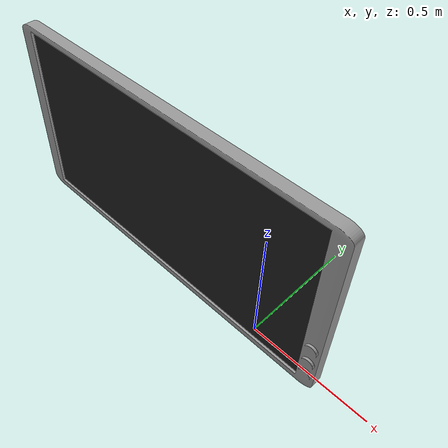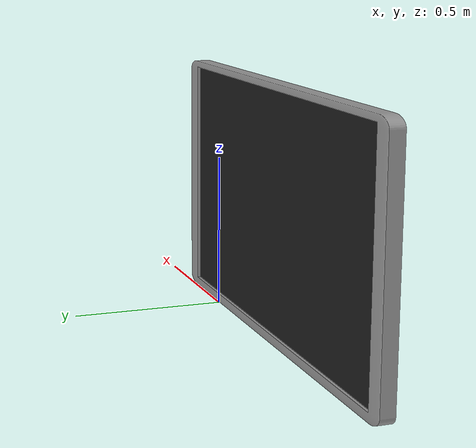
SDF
<?xml version='1.0'?>
<sdf version='1.6'>
  <model name='tv16'>
    <link name='link_0'>
      <pose frame=''>0 0 0 0 -0 0</pose>
      <inertial>
        <mass>1</mass>
        <inertia>
          <ixx>0.166667</ixx>
          <ixy>0</ixy>
          <ixz>0</ixz>
          <iyy>0.166667</iyy>
          <iyz>0</iyz>
          <izz>0.166667</izz>
        </inertia>
        <pose frame=''>0 0 0 0 -0 0</pose>
      </inertial>
      <self_collide>0</self_collide>
      <kinematic>0</kinematic>
      <gravity>1</gravity>
      <visual name='ModelPreview_0::link_0::visual_2'>
        <pose frame=''>0 0 0 0 -0 0</pose>
        <geometry>
          <mesh>
            <uri>model://tv16/meshes/tv16.stl</uri>
            <scale>0.1 0.1 0.1</scale>
          </mesh>
        </geometry>
        <material>
          <script>
            <uri>file://media/materials/scripts/gazebo.material</uri>
            <name>Gazebo/Grey</name>
          </script>
        </material>
        <cast_shadows>1</cast_shadows>
        <transparency>0</transparency>
      </visual>
      <visual name='ModelPreview_0::link_0::visual_1'>
        <pose frame=''>-0.45 -0.025 0.405 0 -0 0</pose>
        <geometry>
          <box>
            <size>1.43 0.03 0.76</size>
          </box>
        </geometry>
        <material>
          <script>
            <uri>file://media/materials/scripts/gazebo.material</uri>
            <name>Gazebo/Black</name>
          </script>
        </material>
        <cast_shadows>1</cast_shadows>
        <transparency>0</transparency>
      </visual>
    </link>
    <static>1</static>
    <allow_auto_disable>1</allow_auto_disable>
  </model>
</sdf>
